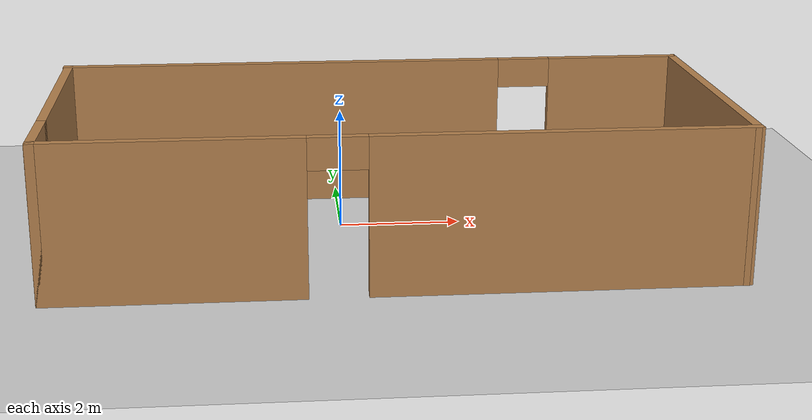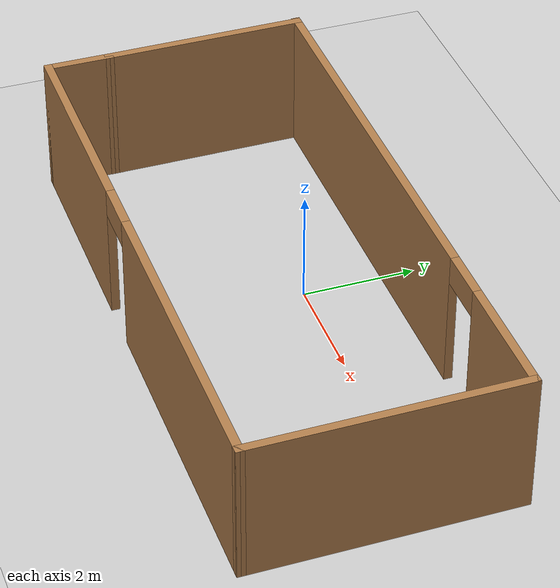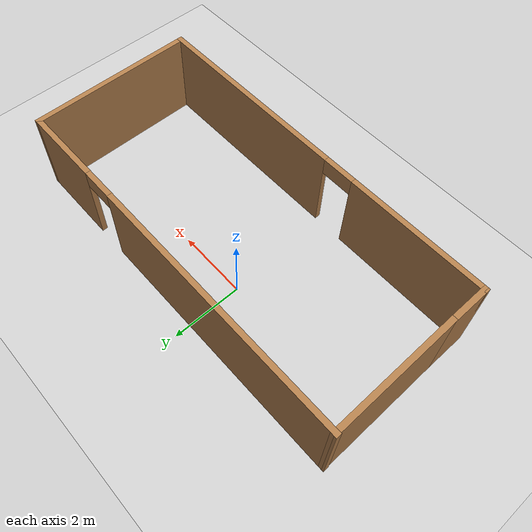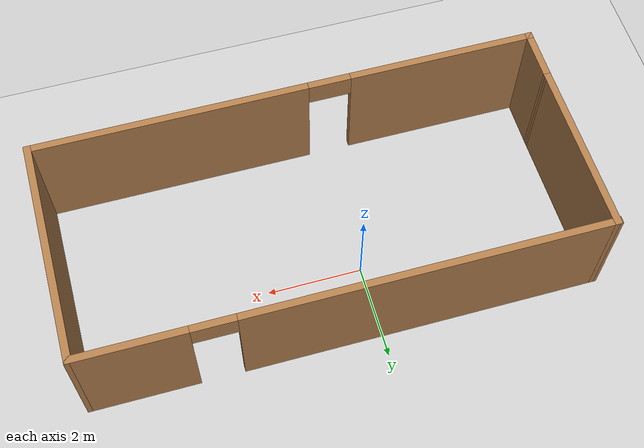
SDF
<sdf version="1.7">
 <world name="default">
  <light name="sun" type="directional">
   <pose>0 0 10 0 -0 0</pose>
   <diffuse>0.8 0.8 0.8 1</diffuse>
   <specular>0.2 0.2 0.2 1</specular>
   <attenuation>
    <range>1000</range>
    <constant>0.9</constant>
    <linear>0.01</linear>
    <quadratic>0.001</quadratic>
   </attenuation>
   <direction>-0.5 0.1 -0.9</direction>
   <spot><inner_angle>0</inner_angle><outer_angle>0</outer_angle><falloff>0</falloff></spot>
  </light>
  <model name="ground_plane">
   <static>1</static>
   <link name="link">
    <collision name="collision">
     <geometry><plane><normal>0 0 1</normal><size>100 100</size></plane></geometry>
     <surface><friction><ode><mu>100</mu><mu2>50</mu2></ode></friction></surface>
    </collision>
    <visual name="visual">
     <cast_shadows>0</cast_shadows>
     <geometry><plane><normal>0 0 1</normal><size>100 100</size></plane></geometry>
     <material>
      <script><uri>file://media/materials/scripts/gazebo.material</uri><name>Gazebo/Grey</name></script>
     </material>
    </visual>
   </link>
  </model>
  <gravity>0 0 -9.8</gravity>
  <magnetic_field>6e-06 2.3e-05 -4.2e-05</magnetic_field>
  <atmosphere type="adiabatic"/>
  <physics type="ode">
   <max_step_size>0.001</max_step_size>
   <real_time_factor>1</real_time_factor>
   <real_time_update_rate>1000</real_time_update_rate>
  </physics>
  <scene><ambient>0.4 0.4 0.4 1</ambient><background>0.7 0.7 0.7 1</background><shadows>1</shadows></scene>
  <audio><device>default</device></audio>
  <spherical_coordinates>
   <surface_model>EARTH_WGS84</surface_model>
   <latitude_deg>0</latitude_deg>
   <longitude_deg>0</longitude_deg>
   <elevation>0</elevation>
   <heading_deg>0</heading_deg>
  </spherical_coordinates>
  <model name="test">
   <pose>0.70973 -0.84017 0 0 -0 0</pose>
   <link name="Wall_0">
    <collision name="Wall_0_Collision">
     <geometry><box><size>1.25 0.15 2.5</size></box></geometry>
     <pose>0 0 1.25 0 -0 0</pose>
    </collision>
    <visual name="Wall_0_Visual">
     <pose>0 0 1.25 0 -0 0</pose>
     <geometry><box><size>1.25 0.15 2.5</size></box></geometry>
     <material>
      <script><uri>file://media/materials/scripts/gazebo.material</uri><name>Gazebo/Wood</name></script>
      <ambient>1 1 1 1</ambient>
     </material>
     <meta><layer>0</layer></meta>
    </visual>
    <pose>-5.27405 -1.77329 0 0 -0 -1.5708</pose>
   </link>
   <link name="Wall_1">
    <pose>0.025953 -2.32329 0 0 -0 0</pose>
    <visual name="Wall_1_Visual_0">
     <pose>-3.37498 0 1.25 0 -0 0</pose>
     <geometry><box><size>4.00005 0.15 2.5</size></box></geometry>
     <material>
      <script><uri>file://media/materials/scripts/gazebo.material</uri><name>Gazebo/Wood</name></script>
      <ambient>1 1 1 1</ambient>
     </material>
     <meta><layer>0</layer></meta>
    </visual>
    <collision name="Wall_1_Collision_0">
     <geometry><box><size>4.00005 0.15 2.5</size></box></geometry>
     <pose>-3.37498 0 1.25 0 -0 0</pose>
    </collision>
    <visual name="Wall_1_Visual_1">
     <pose>2.45003 0 1.25 0 -0 0</pose>
     <geometry><box><size>5.84995 0.15 2.5</size></box></geometry>
     <material>
      <script><uri>file://media/materials/scripts/gazebo.material</uri><name>Gazebo/Wood</name></script>
      <ambient>1 1 1 1</ambient>
     </material>
     <meta><layer>0</layer></meta>
    </visual>
    <collision name="Wall_1_Collision_1">
     <geometry><box><size>5.84995 0.15 2.5</size></box></geometry>
     <pose>2.45003 0 1.25 0 -0 0</pose>
    </collision>
    <visual name="Wall_1_Visual_2">
     <pose>-0.924951 0 2.25 0 -0 0</pose>
     <geometry><box><size>0.9 0.15 0.5</size></box></geometry>
     <material>
      <script><uri>file://media/materials/scripts/gazebo.material</uri><name>Gazebo/Wood</name></script>
      <ambient>1 1 1 1</ambient>
     </material>
     <meta><layer>0</layer></meta>
    </visual>
    <collision name="Wall_1_Collision_2">
     <geometry><box><size>0.9 0.15 0.5</size></box></geometry>
     <pose>-0.924951 0 2.25 0 -0 0</pose>
    </collision>
   </link>
   <link name="Wall_2">
    <collision name="Wall_2_Collision">
     <geometry><box><size>4.79686 0.15 2.5</size></box></geometry>
     <pose>0 0 1.25 0 -0 0</pose>
    </collision>
    <visual name="Wall_2_Visual">
     <pose>0 0 1.25 0 -0 0</pose>
     <geometry><box><size>4.79686 0.15 2.5</size></box></geometry>
     <material>
      <script><uri>file://media/materials/scripts/gazebo.material</uri><name>Gazebo/Wood</name></script>
      <ambient>1 1 1 1</ambient>
     </material>
     <meta><layer>0</layer></meta>
    </visual>
    <pose>5.30846 -0.000117 0 0 -0 1.57832</pose>
   </link>
   <link name="Wall_3">
    <pose>-0.026517 2.32305 0 0 -0 3.14159</pose>
    <visual name="Wall_3_Visual_0">
     <pose>-4.23401 0 1.25 0 -0 0</pose>
     <geometry><box><size>2.28198 0.15 2.5</size></box></geometry>
     <material>
      <script><uri>file://media/materials/scripts/gazebo.material</uri><name>Gazebo/Wood</name></script>
      <ambient>0.996078 0.47451 0.0196078 1</ambient>
     </material>
     <meta><layer>0</layer></meta>
    </visual>
    <collision name="Wall_3_Collision_0">
     <geometry><box><size>2.28198 0.15 2.5</size></box></geometry>
     <pose>-4.23401 0 1.25 0 -0 0</pose>
    </collision>
    <visual name="Wall_3_Visual_1">
     <pose>1.59099 0 1.25 0 -0 0</pose>
     <geometry><box><size>7.56802 0.15 2.5</size></box></geometry>
     <material>
      <script><uri>file://media/materials/scripts/gazebo.material</uri><name>Gazebo/Wood</name></script>
      <ambient>0.996078 0.47451 0.0196078 1</ambient>
     </material>
     <meta><layer>0</layer></meta>
    </visual>
    <collision name="Wall_3_Collision_1">
     <geometry><box><size>7.56802 0.15 2.5</size></box></geometry>
     <pose>1.59099 0 1.25 0 -0 0</pose>
    </collision>
    <visual name="Wall_3_Visual_2">
     <pose>-2.64302 0 2.25 0 -0 0</pose>
     <geometry><box><size>0.9 0.15 0.5</size></box></geometry>
     <material>
      <script><uri>file://media/materials/scripts/gazebo.material</uri><name>Gazebo/Wood</name></script>
      <ambient>0.996078 0.47451 0.0196078 1</ambient>
     </material>
     <meta><layer>0</layer></meta>
    </visual>
    <collision name="Wall_3_Collision_2">
     <geometry><box><size>0.9 0.15 0.5</size></box></geometry>
     <pose>-2.64302 0 2.25 0 -0 0</pose>
    </collision>
   </link>
   <link name="Wall_4">
    <collision name="Wall_4_Collision">
     <geometry><box><size>3.69703 0.15 2.5</size></box></geometry>
     <pose>0 0 1.25 0 -0 0</pose>
    </collision>
    <visual name="Wall_4_Visual">
     <pose>0 0 1.25 0 -0 0</pose>
     <geometry><box><size>3.69703 0.15 2.5</size></box></geometry>
     <material>
      <script><uri>file://media/materials/scripts/gazebo.material</uri><name>Gazebo/Wood</name></script>
      <ambient>0.435294 0.796078 0.67451 1</ambient>
     </material>
     <meta><layer>0</layer></meta>
    </visual>
    <pose>-5.29154 0.549883 0 0 -0 -1.56093</pose>
   </link>
   <static>1</static>
  </model>
 </world>
</sdf>
